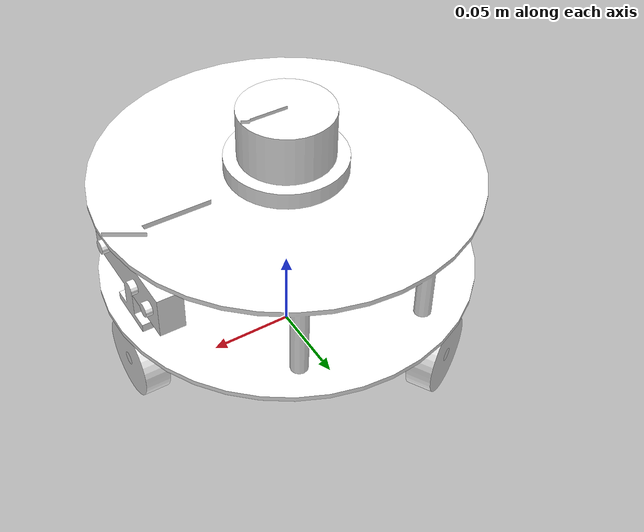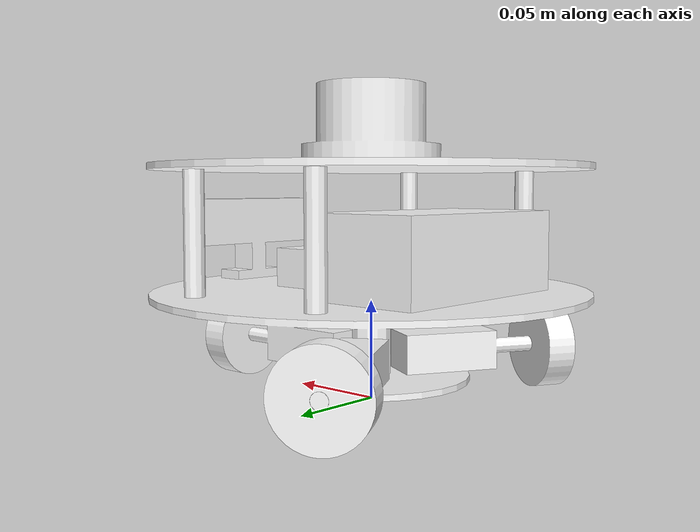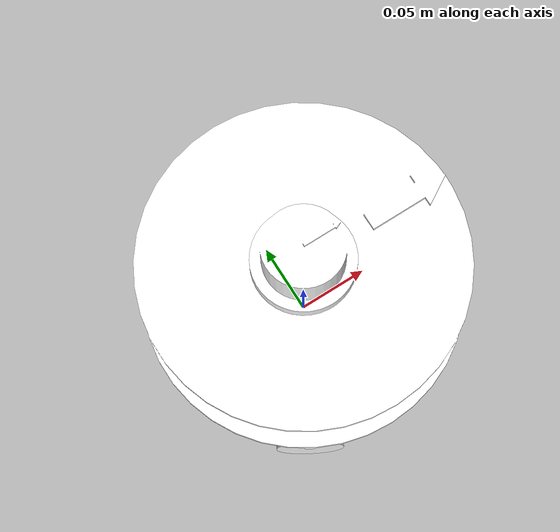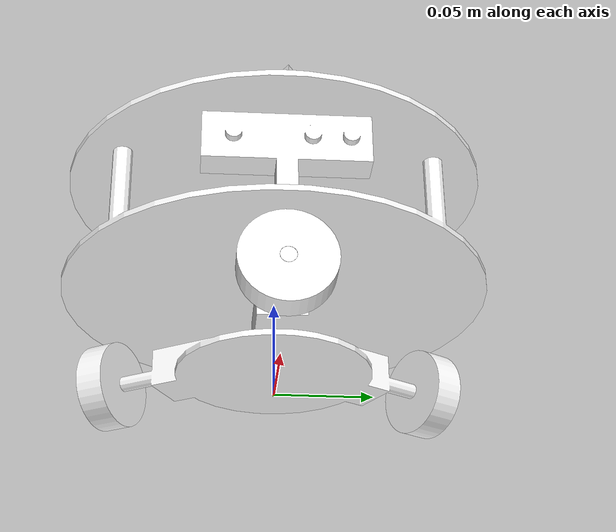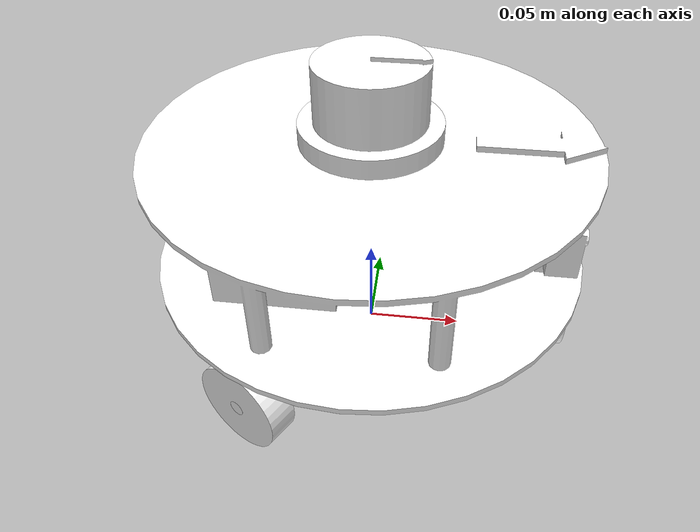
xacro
<?xml version="1.0"?>
<robot name="tribot" xmlns:xacro="http://www.ros.org/wiki/xacro">

    <xacro:property name="M_PI" value="3.1415926"/>
    <xacro:property name="tf_prefix" value="tribot1/"/>
    <xacro:include filename="$(find tribot)/urdf/tribot_base.xacro" />
    <xacro:tribot_base/>

    <xacro:include filename="$(find tribot)/urdf/tribot_wheel.xacro" />
      <link
        name="${tf_prefix}wheel1_link">
        <inertial>
          <origin
            xyz="-7.80625564189563E-18 0.00749999999999999 3.46944695195361E-18"
            rpy="0 0 0" />
          <mass
            value="0.0241745554693735" />
          <inertia
            ixx="3.74705609775289E-06"
            ixy="-8.52717906119514E-23"
            ixz="2.11758236813575E-22"
            iyy="6.58756636540427E-06"
            iyz="-4.61715353010736E-22"
            izz="3.74705609775289E-06" />
        </inertial>
        <visual>
          <origin
            xyz="0 0 0"
            rpy="0 0 0" />
          <geometry>
            <mesh
              filename="package://tribot/meshes/wheel1_link.STL" />
          </geometry>
          <material
            name="">
            <color
              rgba="1 1 1 1" />
          </material>
        </visual>
        <collision>
          <origin
            xyz="0 0 0"
            rpy="0 0 0" />
          <geometry>
            <mesh
              filename="package://tribot/meshes/wheel1_link.STL" />
          </geometry>
        </collision>
      </link>
      <joint
        name="wheel1_joint"
        type="continuous">
        <origin
          xyz="0.09 0 0.013"
          rpy="-3.14159265358979 0.437782614461058 1.5707963267949" />
        <parent
          link="${tf_prefix}base_link" />
        <child
          link="${tf_prefix}wheel1_link" />
        <axis
          xyz="0 1 0" />
      </joint>
    <xacro:tribot_wheel prefix="wheel1"/>

    <xacro:include filename="$(find tribot)/urdf/tribot_wheel.xacro" />
      <link
        name="${tf_prefix}wheel2_link">
        <inertial>
          <origin
            xyz="1.56125112837913E-17 -0.0354359291783573 2.08166817117217E-17"
            rpy="0 0 0" />
          <mass
            value="0.0241745554693735" />
          <inertia
            ixx="3.74705609775289E-06"
            ixy="-1.05879118406788E-22"
            ixz="4.76456032830544E-22"
            iyy="6.58756636540427E-06"
            iyz="-6.35274710440725E-22"
            izz="3.74705609775289E-06" />
        </inertial>
        <visual>
          <origin
            xyz="0 0 0"
            rpy="0 0 0" />
          <geometry>
            <mesh
              filename="package://tribot/meshes/wheel2_link.STL" />
          </geometry>
          <material
            name="">
            <color
              rgba="1 1 1 1" />
          </material>
        </visual>
        <collision>
          <origin
            xyz="0 0 0"
            rpy="0 0 0" />
          <geometry>
            <mesh
              filename="package://tribot/meshes/wheel2_link.STL" />
          </geometry>
        </collision>
      </link>
      <joint
        name="wheel2_joint"
        type="continuous">
        <origin
          xyz="-0.0310320354108216 0.053749061993819 0.013"
          rpy="0 0.656633921478255 -2.61799387799149" />
        <parent
          link="${tf_prefix}base_link" />
        <child
          link="${tf_prefix}wheel2_link" />
        <axis
          xyz="0 -1 0" />
      </joint>
    <xacro:tribot_wheel prefix="wheel2"/>

    <xacro:include filename="$(find tribot)/urdf/tribot_wheel.xacro" />
      <link
        name="${tf_prefix}wheel3_link">
        <inertial>
          <origin
            xyz="-3.46944695195361E-18 -0.00375000000000011 1.73472347597681E-17"
            rpy="0 0 0" />
          <mass
            value="0.0241745554693735" />
          <inertia
            ixx="3.74705609775289E-06"
            ixy="-4.76456032830544E-22"
            ixz="2.91167575618666E-22"
            iyy="6.58756636540428E-06"
            iyz="-1.37642853928824E-21"
            izz="3.74705609775289E-06" />
        </inertial>
        <visual>
          <origin
            xyz="0 0 0"
            rpy="0 0 0" />
          <geometry>
            <mesh
              filename="package://tribot/meshes/wheel3_link.STL" />
          </geometry>
          <material
            name="">
            <color
              rgba="1 1 1 1" />
          </material>
        </visual>
        <collision>
          <origin
            xyz="0 0 0"
            rpy="0 0 0" />
          <geometry>
            <mesh
              filename="package://tribot/meshes/wheel3_link.STL" />
          </geometry>
        </collision>
      </link>
      <joint
        name="wheel3_joint"
        type="continuous">
        <origin
          xyz="-0.0468749999999992 -0.0811898816047915 0.013"
          rpy="0 0.98745546738505 -0.52359877559829" />
        <parent
          link="${tf_prefix}base_link" />
        <child
          link="${tf_prefix}wheel3_link" />
        <axis
          xyz="0 -1 0" />
      </joint>
    <xacro:tribot_wheel prefix="wheel3"/>

    <xacro:include filename="$(find tribot)/urdf/tribot_lidar.xacro" />
      <joint
        name="${tf_prefix}lidar_joint"
        type="fixed">
        <origin
          xyz="0 0 0.134"
          rpy="0 0 0" />
        <parent
          link="${tf_prefix}base_link" />
        <child
          link="${tf_prefix}lidar_link" />
        <axis
          xyz="0 0 0" />
      </joint>
    <xacro:tribot_lidar/>

    <xacro:include filename="$(find tribot)/urdf/tribot_camera.xacro" />
      <joint
        name="camera_joint"
        type="fixed">
        <origin
          xyz="0.1 0 0.0785"
          rpy="0 0 0" />
        <parent
          link="${tf_prefix}base_link" />
        <child
          link="${tf_prefix}camera_link" />
        <axis
          xyz="0 0 0" />
      </joint>
    <xacro:tribot_camera/>
</robot>

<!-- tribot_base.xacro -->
<robot name="tribot_base" xmlns:xacro="http://www.ros.org/wiki/xacro">
    <xacro:macro name="tribot_base">
        <!-- base link 在地面的投影 -->
        <link name="${tf_prefix}base_footprint">
            <visual>
                <origin xyz="0 0 0" rpy="0 0 0" />
                <geometry>
                    <box size="0.001 0.001 0.001" />
                </geometry>
            </visual>
        </link>
        <gazebo reference="${tf_prefix}base_footprint">
            <turnGravityOff>false</turnGravityOff>
        </gazebo>
        <joint name="base_footprint_joint" type="fixed">
            <origin xyz="0 0 0.01" rpy="0 0 0" />  <!-- 0.01m is the height of base...between the 2 frames -->
            <parent link="${tf_prefix}base_footprint"/>
            <child link="${tf_prefix}base_link" />
        </joint>

        <link
            name="${tf_prefix}base_link">
            <inertial>
            <origin
                xyz="-0.0142603857901154 0.0599787969233426 1.44010907857361E-17"
                rpy="0 0 0" />
            <mass
                value="0.664049355983333" />
            <inertia
                ixx="0.0018092011652393"
                ixy="5.86355846547153E-05"
                ixz="-6.25148858144493E-19"
                iyy="0.00242024125021245"
                iyz="6.82341546852814E-19"
                izz="0.00185445818753784" />
            </inertial>
            <visual>
            <origin
                xyz="0 0 0"
                rpy="0 0 0" />
            <geometry>
                <mesh
                filename="package://tribot/meshes/base_link.STL" />
            </geometry>
            <material
                name="">
                <color
                rgba="1 1 1 1" />
            </material>
            </visual>
            <collision>
            <origin
                xyz="0 0 0"
                rpy="0 0 0" />
            <geometry>
                <mesh
                filename="package://tribot/meshes/base_link.STL" />
            </geometry>
            </collision>
        </link>

        <gazebo reference="${tf_prefix}base_link">
            <material>Gazebo/White</material>
        </gazebo>
    </xacro:macro>
</robot>

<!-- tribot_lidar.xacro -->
<robot xmlns:xacro="http://www.ros.org/wiki/xacro" name="tribot_lidar">

    <xacro:macro name="tribot_lidar">
        <!-- Create laser reference frame -->
        <link
            name="${tf_prefix}lidar_link">
            <inertial>
            <origin
                xyz="1.36434720762702E-05 -1.44740607596658E-18 -0.00698948248298292"
                rpy="0 0 0" />
            <mass
                value="0.109869393334793" />
            <inertia
                ixx="4.09822179723856E-05"
                ixy="-9.88105863196233E-23"
                ixz="-3.44612342419914E-08"
                iyy="4.1009202270821E-05"
                iyz="-4.05895586449359E-21"
                izz="5.0549647269255E-05" />
            </inertial>
            <visual>
            <origin
                xyz="0 0 0"
                rpy="0 0 0" />
            <geometry>
                <mesh
                filename="package://tribot/meshes/lidar_link.STL" />
            </geometry>
            <material
                name="">
                <color
                rgba="1 1 1 1" />
            </material>
            </visual>
            <collision>
            <origin
                xyz="0 0 0"
                rpy="0 0 0" />
            <geometry>
                <mesh
                filename="package://tribot/meshes/lidar_link.STL" />
            </geometry>
            </collision>
        </link>

        <!-- reference here must be the same with link name above -->
        <gazebo reference="${tf_prefix}lidar_link">
            <material>Gazebo/Black</material>
        </gazebo>
        <gazebo reference="${tf_prefix}lidar_link">
            <sensor type="ray" name="tribot_lidar">
                <pose>0 0 0 0 0 0</pose>
                <visualize>false</visualize>
                <update_rate>5.5</update_rate>
                <ray>
                    <scan>
                      <horizontal>
                        <samples>720</samples>
                        <resolution>0.5</resolution>
                        <min_angle>-3.14</min_angle>
                        <max_angle>3.14</max_angle>
                      </horizontal>
                    </scan>
                    <range>
                      <min>0.2</min>
                      <max>2</max>
                      <resolution>0.01</resolution>
                    </range>
                    <noise>
                      <type>gaussian</type>
                      <mean>0.001</mean>
                      <stddev>0.001</stddev>
                    </noise>
                </ray>
                <plugin name="gazebo_rplidar" filename="libgazebo_ros_laser.so">
                    <robotNamespace>/</robotNamespace>
                    <topicName>/${tf_prefix}scan</topicName>
                    <frameName>${tf_prefix}lidar_link</frameName>
                    <!-- the same name with reference="lidar_link" -->
                </plugin>
            </sensor>
        </gazebo>

    </xacro:macro>
</robot>

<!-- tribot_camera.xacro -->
<robot xmlns:xacro="http://www.ros.org/wiki/xacro" name="tribot_camera">
    <xacro:macro name="tribot_camera" params="prefix:=camera">
        <link
            name="${tf_prefix}camera_link">
            <inertial>
            <origin
                xyz="-0.00733675940313475 9.73715840950891E-05 -0.00320483732373046"
                rpy="0 0 0" />
            <mass
                value="0.0351031857894892" />
            <inertia
                ixx="2.07013958270657E-05"
                ixy="-3.19135366871557E-08"
                ixz="-1.83645671473402E-08"
                iyy="4.87742489758018E-06"
                iyz="-1.09543032106933E-08"
                izz="1.72263336361694E-05" />
            </inertial>
            <visual>
                <origin
                    xyz="0 0 0"
                    rpy="0 0 0" />
                <geometry>
                    <mesh
                    filename="package://tribot/meshes/camera_link.STL" />
                </geometry>
                <material
                    name="">
                    <color
                    rgba="1 1 1 1" />
                </material>
            </visual>
            <collision>
                <origin
                    xyz="0 0 0"
                    rpy="0 0 0" />
                <geometry>
                    <mesh
                    filename="package://tribot/meshes/camera_link.STL" />
                </geometry>
            </collision>
        </link>

        <!-- reference here must be the same with link name above -->
        <gazebo reference="${tf_prefix}camera_link">
            <material>Gazebo/Red</material>
        </gazebo>
        <gazebo reference="${tf_prefix}camera_link">
            <sensor type="depth" name="${prefix}">
                <always_on>true</always_on>
                <update_rate>20.0</update_rate>
                <camera>
                    <horizontal_fov>${60.0*M_PI/180.0}</horizontal_fov>
                    <image>
                        <format>R8G8B8</format>
                        <width>640</width>
                        <height>480</height>
                    </image>
                    <clip>
                        <near>0.05</near>
                        <far>8.0</far>
                    </clip>
                </camera>
                <plugin name="kinect_${prefix}_controller" filename="libgazebo_ros_openni_kinect.so">
                    <robotNamespace>/</robotNamespace>
                    <cameraName>${prefix}</cameraName>
                    <alwaysOn>true</alwaysOn>
                    <updateRate>10</updateRate>
                    <imageTopicName>rgb/${tf_prefix}image_raw</imageTopicName>
                    <depthImageTopicName>depth/${tf_prefix}image_raw</depthImageTopicName>
                    <pointCloudTopicName>depth/${tf_prefix}points</pointCloudTopicName>
                    <cameraInfoTopicName>rgb/${tf_prefix}camera_info</cameraInfoTopicName>
                    <depthImageCameraInfoTopicName>depth/${tf_prefix}camera_info</depthImageCameraInfoTopicName>
                    <frameName>${tf_prefix}camera_link</frameName>
                    <!-- the same name with reference="camera_link" -->
                    <baseline>0.1</baseline>
                    <distortion_k1>0.0</distortion_k1>
                    <distortion_k2>0.0</distortion_k2>
                    <distortion_k3>0.0</distortion_k3>
                    <distortion_t1>0.0</distortion_t1>
                    <distortion_t2>0.0</distortion_t2>
                    <pointCloudCutoff>0.4</pointCloudCutoff>
                </plugin>
            </sensor>
        </gazebo>

    </xacro:macro>
</robot>
